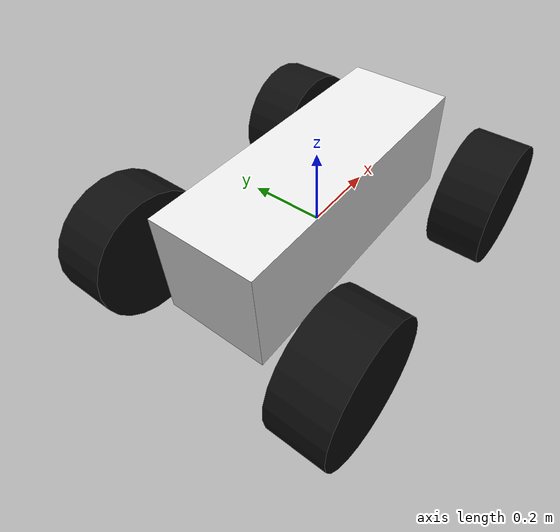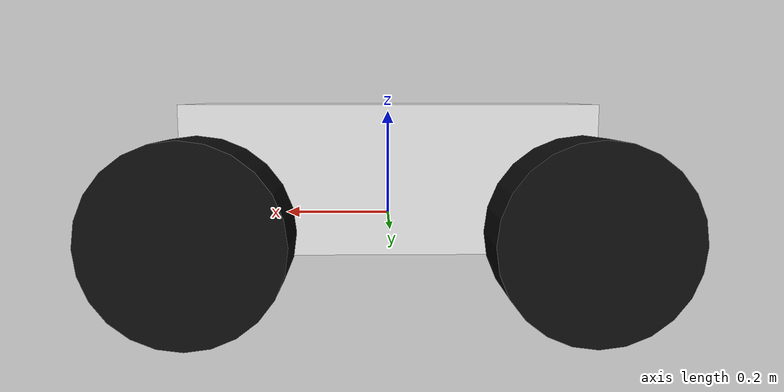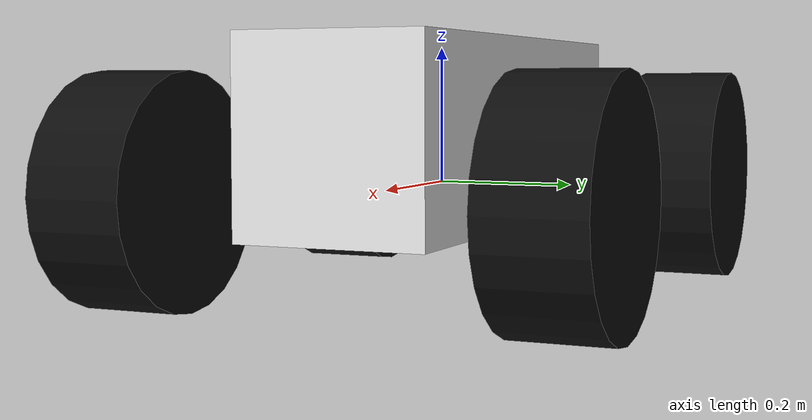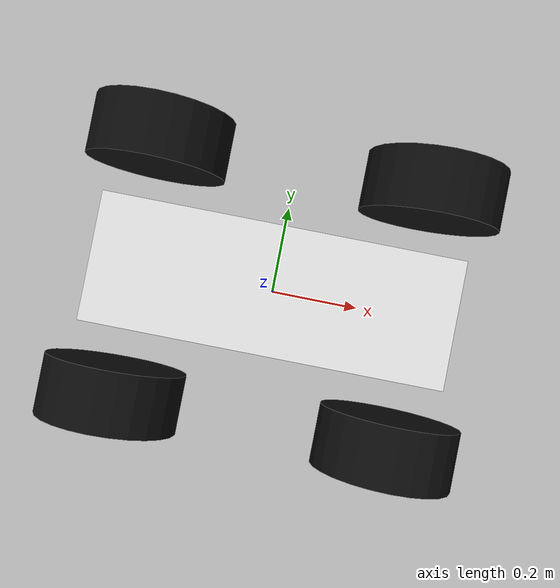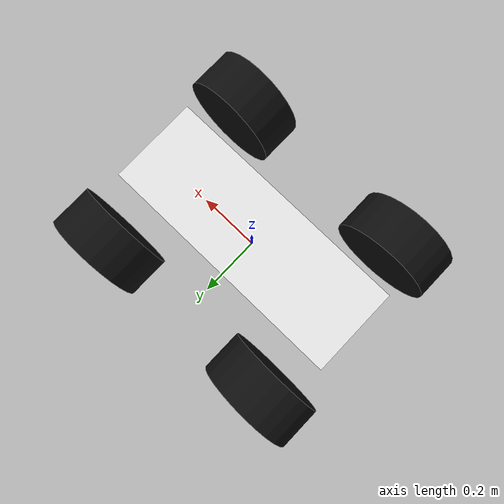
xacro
<?xml version="1.0"?>
<robot xmlns:xacro="http://www.ros.org/wiki/xacro" name="patrol">

  <xacro:property name="wheelbase" value="0.650"/>
  <xacro:property name="track_width" value="0.605"/>
  <xacro:property name="wheel_radius" value="0.165"/>
  <xacro:property name="wheel_width" value="0.140"/>
  <xacro:property name="ground_clearance" value="0.105"/>
  <!-- Table says 380 mm, drawing says 375 mm: use the larger envelope. -->
  <xacro:property name="vehicle_height" value="0.380"/>
  <!-- Simplified body: 760 mm length and 270 mm upper-body span from drawing.
       The real body is tapered; this box is not a measured maximum body width. -->
  <xacro:property name="chassis_length" value="0.760"/>
  <xacro:property name="chassis_width" value="0.270"/>
  <xacro:property name="chassis_height" value="${vehicle_height - ground_clearance}"/>
  <xacro:property name="chassis_center_z" value="${ground_clearance + chassis_height / 2 - wheel_radius}"/>
  <!-- Default to the manual's 65 kg variant. Individual link masses are estimates. -->
  <xacro:property name="vehicle_mass" value="65.0"/>
  <xacro:property name="wheel_mass" value="2.0"/>
  <xacro:property name="steering_knuckle_mass" value="0.5"/>
  <xacro:property name="chassis_mass" value="${vehicle_mass - 4 * wheel_mass - 2 * steering_knuckle_mass}"/>
  <!-- Provisional individual wheel-joint bound, not a bicycle steering angle.
       The manual quotes 33 degrees without a precise reference-point definition. -->
  <xacro:property name="steering_limit" value="${33.0 * pi / 180.0}"/>

  <material name="wheel_black"><color rgba="0.05 0.05 0.05 1"/></material>
  <material name="chassis_white"><color rgba="0.9 0.9 0.9 1"/></material>

  <xacro:include filename="$(find ugv_description)/urdf/chassis.xacro"/>
  <xacro:include filename="$(find ugv_description)/urdf/wheels.xacro"/>
  <xacro:include filename="$(find ugv_description)/urdf/ros2_control.xacro"/>

  <xacro:chassis/>
  <xacro:front_wheel side="left"  x="${ wheelbase / 2}" y="${ track_width / 2}"/>
  <xacro:front_wheel side="right" x="${ wheelbase / 2}" y="${-track_width / 2}"/>
  <xacro:rear_wheel  side="left"  x="${-wheelbase / 2}" y="${ track_width / 2}"/>
  <xacro:rear_wheel  side="right" x="${-wheelbase / 2}" y="${-track_width / 2}"/>

  <!-- Launch-time configuration -->
  <xacro:arg name="use_gazebo" default="false"/>
  <xacro:arg name="controllers_file" default=""/>

  <!-- Include Gazebo configuration -->
  <xacro:include filename="$(find ugv_description)/urdf/gazebo.xacro"/>

  <!-- Enable the Gazebo plugin only for simulation -->
  <xacro:if value="$(arg use_gazebo)">
      <xacro:patrol_gazebo_control
          controller_config="$(arg controllers_file)"/>
  </xacro:if>

</robot>

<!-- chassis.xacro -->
<robot xmlns:xacro="http://www.ros.org/wiki/xacro">
  <xacro:macro name="chassis" params="">
    <!-- base_link is midway between the axles, at wheel-axle height.
         The body geometry and estimated center of mass are raised above it. -->
    <link name="base_link">
      <visual>
        <origin xyz="0 0 ${chassis_center_z}"/>
        <geometry><box size="${chassis_length} ${chassis_width} ${chassis_height}"/></geometry>
        <material name="chassis_white"/>
      </visual>
      <collision>
        <origin xyz="0 0 ${chassis_center_z}"/>
        <geometry><box size="${chassis_length} ${chassis_width} ${chassis_height}"/></geometry>
      </collision>
      <inertial>
        <origin xyz="0 0 ${chassis_center_z}"/>
        <mass value="${chassis_mass}"/>
        <!-- Solid rectangular box, principal inertia about its center. -->
        <inertia
          ixx="${chassis_mass * (chassis_width**2 + chassis_height**2) / 12.0}"
          ixy="0" ixz="0"
          iyy="${chassis_mass * (chassis_length**2 + chassis_height**2) / 12.0}"
          iyz="0"
          izz="${chassis_mass * (chassis_length**2 + chassis_width**2) / 12.0}"/>
      </inertial>
    </link>
  </xacro:macro>
</robot>

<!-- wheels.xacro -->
<robot xmlns:xacro="http://www.ros.org/wiki/xacro">

  <!-- Reusable link geometry for all four wheels. Wheel axle is local Y. -->
  <xacro:macro name="wheel_body" params="name">
    <link name="${name}">
      <visual>
        <origin rpy="${pi/2} 0 0"/>
        <geometry><cylinder radius="${wheel_radius}" length="${wheel_width}"/></geometry>
        <material name="wheel_black"/>
      </visual>
      <collision>
        <origin rpy="${pi/2} 0 0"/>
        <geometry><cylinder radius="${wheel_radius}" length="${wheel_width}"/></geometry>
      </collision>
      <inertial>
        <mass value="${wheel_mass}"/>
        <!-- Solid cylinder aligned with local Y, not Z. -->
        <inertia
          ixx="${wheel_mass * (3*wheel_radius**2 + wheel_width**2) / 12.0}"
          ixy="0" ixz="0"
          iyy="${wheel_mass * wheel_radius**2 / 2.0}"
          iyz="0"
          izz="${wheel_mass * (3*wheel_radius**2 + wheel_width**2) / 12.0}"/>
      </inertial>
    </link>
  </xacro:macro>

  <xacro:macro name="front_wheel" params="side x y">
    <!-- An invisible but physical steering knuckle (nonzero inertia). -->
    <link name="front_${side}_steering_link">
      <inertial>
        <mass value="${steering_knuckle_mass}"/>
        <inertia ixx="0.001" ixy="0" ixz="0" iyy="0.001" iyz="0" izz="0.001"/>
      </inertial>
    </link>
    <joint name="front_${side}_steering_joint" type="revolute">
      <parent link="base_link"/>
      <child link="front_${side}_steering_link"/>
      <origin xyz="${x} ${y} 0" rpy="0 0 0"/>
      <axis xyz="0 0 1"/>
      <limit lower="${-steering_limit}" upper="${steering_limit}" effort="30" velocity="1.2"/>
      <dynamics damping="0.1" friction="0.0"/>
    </joint>

    <xacro:wheel_body name="front_${side}_wheel_link"/>
    <joint name="front_${side}_wheel_joint" type="continuous">
      <parent link="front_${side}_steering_link"/>
      <child link="front_${side}_wheel_link"/>
      <origin xyz="0 0 0" rpy="0 0 0"/>
      <axis xyz="0 1 0"/>
      <limit effort="60" velocity="35"/>
      <dynamics damping="0.05" friction="0.0"/>
    </joint>
  </xacro:macro>

  <xacro:macro name="rear_wheel" params="side x y">
    <xacro:wheel_body name="rear_${side}_wheel_link"/>
    <joint name="rear_${side}_wheel_joint" type="continuous">
      <parent link="base_link"/>
      <child link="rear_${side}_wheel_link"/>
      <origin xyz="${x} ${y} 0" rpy="0 0 0"/>
      <axis xyz="0 1 0"/>
      <limit effort="60" velocity="35"/>
      <dynamics damping="0.05" friction="0.0"/>
    </joint>
  </xacro:macro>
</robot>
